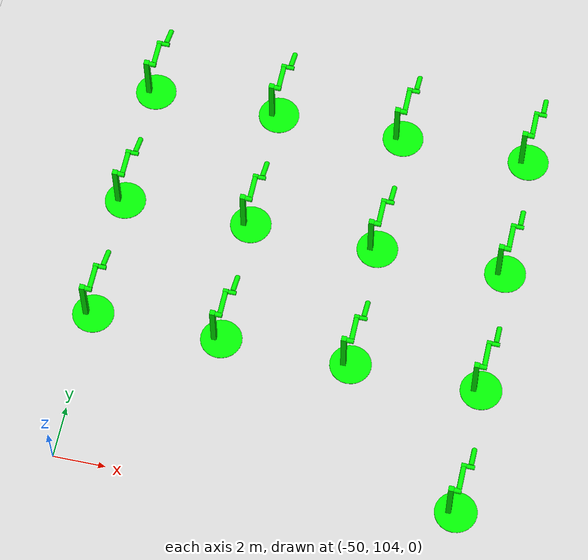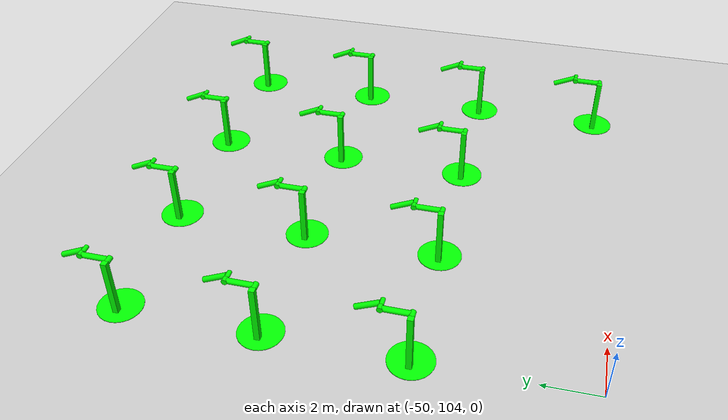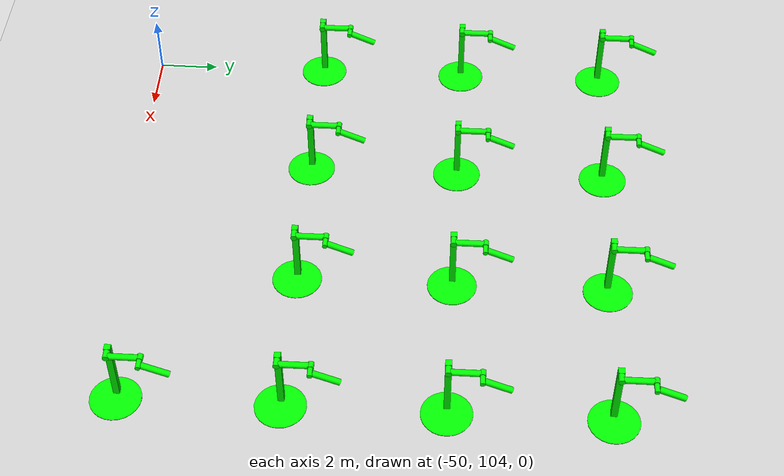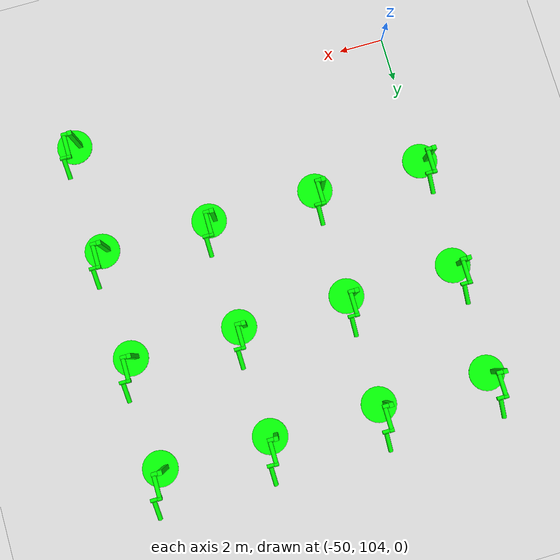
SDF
<sdf version="1.6">
 <world name="double_pendulums">
  <model name="ground_plane">
   <static>true</static>
   <link name="link">
    <collision name="collision">
     <geometry><plane><normal>0 0 1</normal><size>100 100</size></plane></geometry>
    </collision>
    <visual name="visual">
     <geometry><plane><normal>0 0 1</normal><size>100 100</size></plane></geometry>
     <material>
      <ambient>0.8 0.8 0.8 1</ambient>
      <diffuse>0.8 0.8 0.8 1</diffuse>
      <specular>0.8 0.8 0.8 1</specular>
     </material>
    </visual>
   </link>
  </model>
  <model name="dbl_pendulum_528">
   <pose>-35 105 0 0 0 0</pose>
   <link name="base">
    <inertial><mass>100</mass></inertial>
    <visual name="vis_plate_on_ground">
     <pose>0 0 0.01 0 0 0</pose>
     <geometry><cylinder><radius>0.8</radius><length>0.02</length></cylinder></geometry>
     <material><ambient>0 1 0 1</ambient><diffuse>0 1 0 1</diffuse><specular>0 1 0 1</specular></material>
    </visual>
    <visual name="vis_pole">
     <pose>-0.275 0 1.1 0 0 0</pose>
     <geometry><box><size>0.2 0.2 2.2</size></box></geometry>
     <material><ambient>0 1 0 1</ambient><diffuse>0 1 0 1</diffuse><specular>0 1 0 1</specular></material>
    </visual>
    <collision name="col_plate_on_ground">
     <pose>0 0 0.01 0 0 0</pose>
     <geometry><cylinder><radius>0.8</radius><length>0.02</length></cylinder></geometry>
    </collision>
    <collision name="col_pole">
     <pose>-0.275 0 1.1 0 0 0</pose>
     <geometry><box><size>0.2 0.2 2.2</size></box></geometry>
    </collision>
   </link>
   <link name="upper_link">
    <pose>0 0 2.1 -1.5708 0 0</pose>
    <inertial><pose>0 0 0.5 0 0 0</pose></inertial>
    <visual name="vis_upper_joint">
     <pose>-0.05 0 0 0 1.5708 0</pose>
     <geometry><cylinder><radius>0.1</radius><length>0.3</length></cylinder></geometry>
     <material><ambient>0 1 0 1</ambient><diffuse>0 1 0 1</diffuse><specular>0 1 0 1</specular></material>
    </visual>
    <visual name="vis_lower_joint">
     <pose>0 0 1.0 0 1.5708 0</pose>
     <geometry><cylinder><radius>0.1</radius><length>0.2</length></cylinder></geometry>
     <material><ambient>0 1 0 1</ambient><diffuse>0 1 0 1</diffuse><specular>0 1 0 1</specular></material>
    </visual>
    <visual name="vis_cylinder">
     <pose>0 0 0.5 0 0 0</pose>
     <geometry><cylinder><radius>0.1</radius><length>0.9</length></cylinder></geometry>
     <material><ambient>0 1 0 1</ambient><diffuse>0 1 0 1</diffuse><specular>0 1 0 1</specular></material>
    </visual>
    <collision name="col_upper_joint">
     <pose>-0.05 0 0 0 1.5708 0</pose>
     <geometry><cylinder><radius>0.1</radius><length>0.3</length></cylinder></geometry>
    </collision>
    <collision name="col_lower_joint">
     <pose>0 0 1.0 0 1.5708 0</pose>
     <geometry><cylinder><radius>0.1</radius><length>0.2</length></cylinder></geometry>
    </collision>
    <collision name="col_cylinder">
     <pose>0 0 0.5 0 0 0</pose>
     <geometry><cylinder><radius>0.1</radius><length>0.9</length></cylinder></geometry>
    </collision>
   </link>
   <link name="lower_link">
    <pose>0.25 1.0 2.1 -2 0 0</pose>
    <inertial><pose>0 0 0.5 0 0 0</pose></inertial>
    <visual name="vis_lower_joint">
     <pose>0 0 0 0 1.5708 0</pose>
     <geometry><cylinder><radius>0.08</radius><length>0.3</length></cylinder></geometry>
     <material><ambient>0 1 0 1</ambient><diffuse>0 1 0 1</diffuse><specular>0 1 0 1</specular></material>
    </visual>
    <visual name="vis_cylinder">
     <pose>0 0 0.5 0 0 0</pose>
     <geometry><cylinder><radius>0.1</radius><length>0.9</length></cylinder></geometry>
     <material><ambient>0 1 0 1</ambient><diffuse>0 1 0 1</diffuse><specular>0 1 0 1</specular></material>
    </visual>
    <collision name="col_lower_joint">
     <pose>0 0 0 0 1.5708 0</pose>
     <geometry><cylinder><radius>0.08</radius><length>0.3</length></cylinder></geometry>
    </collision>
    <collision name="col_cylinder">
     <pose>0 0 0.5 0 0 0</pose>
     <geometry><cylinder><radius>0.1</radius><length>0.9</length></cylinder></geometry>
    </collision>
   </link>
   <joint name="upper_joint" type="revolute">
    <parent>base</parent>
    <child>upper_link</child>
    <axis><xyz>1.0 0 0</xyz></axis>
   </joint>
   <joint name="lower_joint" type="revolute">
    <parent>upper_link</parent>
    <child>lower_link</child>
    <axis><xyz>1.0 0 0</xyz></axis>
   </joint>
  </model>
  <model name="dbl_pendulum_550">
   <pose>-50 110 0 0 0 0</pose>
   <link name="base">
    <inertial><mass>100</mass></inertial>
    <visual name="vis_plate_on_ground">
     <pose>0 0 0.01 0 0 0</pose>
     <geometry><cylinder><radius>0.8</radius><length>0.02</length></cylinder></geometry>
     <material><ambient>0 1 0 1</ambient><diffuse>0 1 0 1</diffuse><specular>0 1 0 1</specular></material>
    </visual>
    <visual name="vis_pole">
     <pose>-0.275 0 1.1 0 0 0</pose>
     <geometry><box><size>0.2 0.2 2.2</size></box></geometry>
     <material><ambient>0 1 0 1</ambient><diffuse>0 1 0 1</diffuse><specular>0 1 0 1</specular></material>
    </visual>
    <collision name="col_plate_on_ground">
     <pose>0 0 0.01 0 0 0</pose>
     <geometry><cylinder><radius>0.8</radius><length>0.02</length></cylinder></geometry>
    </collision>
    <collision name="col_pole">
     <pose>-0.275 0 1.1 0 0 0</pose>
     <geometry><box><size>0.2 0.2 2.2</size></box></geometry>
    </collision>
   </link>
   <link name="upper_link">
    <pose>0 0 2.1 -1.5708 0 0</pose>
    <inertial><pose>0 0 0.5 0 0 0</pose></inertial>
    <visual name="vis_upper_joint">
     <pose>-0.05 0 0 0 1.5708 0</pose>
     <geometry><cylinder><radius>0.1</radius><length>0.3</length></cylinder></geometry>
     <material><ambient>0 1 0 1</ambient><diffuse>0 1 0 1</diffuse><specular>0 1 0 1</specular></material>
    </visual>
    <visual name="vis_lower_joint">
     <pose>0 0 1.0 0 1.5708 0</pose>
     <geometry><cylinder><radius>0.1</radius><length>0.2</length></cylinder></geometry>
     <material><ambient>0 1 0 1</ambient><diffuse>0 1 0 1</diffuse><specular>0 1 0 1</specular></material>
    </visual>
    <visual name="vis_cylinder">
     <pose>0 0 0.5 0 0 0</pose>
     <geometry><cylinder><radius>0.1</radius><length>0.9</length></cylinder></geometry>
     <material><ambient>0 1 0 1</ambient><diffuse>0 1 0 1</diffuse><specular>0 1 0 1</specular></material>
    </visual>
    <collision name="col_upper_joint">
     <pose>-0.05 0 0 0 1.5708 0</pose>
     <geometry><cylinder><radius>0.1</radius><length>0.3</length></cylinder></geometry>
    </collision>
    <collision name="col_lower_joint">
     <pose>0 0 1.0 0 1.5708 0</pose>
     <geometry><cylinder><radius>0.1</radius><length>0.2</length></cylinder></geometry>
    </collision>
    <collision name="col_cylinder">
     <pose>0 0 0.5 0 0 0</pose>
     <geometry><cylinder><radius>0.1</radius><length>0.9</length></cylinder></geometry>
    </collision>
   </link>
   <link name="lower_link">
    <pose>0.25 1.0 2.1 -2 0 0</pose>
    <inertial><pose>0 0 0.5 0 0 0</pose></inertial>
    <visual name="vis_lower_joint">
     <pose>0 0 0 0 1.5708 0</pose>
     <geometry><cylinder><radius>0.08</radius><length>0.3</length></cylinder></geometry>
     <material><ambient>0 1 0 1</ambient><diffuse>0 1 0 1</diffuse><specular>0 1 0 1</specular></material>
    </visual>
    <visual name="vis_cylinder">
     <pose>0 0 0.5 0 0 0</pose>
     <geometry><cylinder><radius>0.1</radius><length>0.9</length></cylinder></geometry>
     <material><ambient>0 1 0 1</ambient><diffuse>0 1 0 1</diffuse><specular>0 1 0 1</specular></material>
    </visual>
    <collision name="col_lower_joint">
     <pose>0 0 0 0 1.5708 0</pose>
     <geometry><cylinder><radius>0.08</radius><length>0.3</length></cylinder></geometry>
    </collision>
    <collision name="col_cylinder">
     <pose>0 0 0.5 0 0 0</pose>
     <geometry><cylinder><radius>0.1</radius><length>0.9</length></cylinder></geometry>
    </collision>
   </link>
   <joint name="upper_joint" type="revolute">
    <parent>base</parent>
    <child>upper_link</child>
    <axis><xyz>1.0 0 0</xyz></axis>
   </joint>
   <joint name="lower_joint" type="revolute">
    <parent>upper_link</parent>
    <child>lower_link</child>
    <axis><xyz>1.0 0 0</xyz></axis>
   </joint>
  </model>
  <model name="dbl_pendulum_551">
   <pose>-45 110 0 0 0 0</pose>
   <link name="base">
    <inertial><mass>100</mass></inertial>
    <visual name="vis_plate_on_ground">
     <pose>0 0 0.01 0 0 0</pose>
     <geometry><cylinder><radius>0.8</radius><length>0.02</length></cylinder></geometry>
     <material><ambient>0 1 0 1</ambient><diffuse>0 1 0 1</diffuse><specular>0 1 0 1</specular></material>
    </visual>
    <visual name="vis_pole">
     <pose>-0.275 0 1.1 0 0 0</pose>
     <geometry><box><size>0.2 0.2 2.2</size></box></geometry>
     <material><ambient>0 1 0 1</ambient><diffuse>0 1 0 1</diffuse><specular>0 1 0 1</specular></material>
    </visual>
    <collision name="col_plate_on_ground">
     <pose>0 0 0.01 0 0 0</pose>
     <geometry><cylinder><radius>0.8</radius><length>0.02</length></cylinder></geometry>
    </collision>
    <collision name="col_pole">
     <pose>-0.275 0 1.1 0 0 0</pose>
     <geometry><box><size>0.2 0.2 2.2</size></box></geometry>
    </collision>
   </link>
   <link name="upper_link">
    <pose>0 0 2.1 -1.5708 0 0</pose>
    <inertial><pose>0 0 0.5 0 0 0</pose></inertial>
    <visual name="vis_upper_joint">
     <pose>-0.05 0 0 0 1.5708 0</pose>
     <geometry><cylinder><radius>0.1</radius><length>0.3</length></cylinder></geometry>
     <material><ambient>0 1 0 1</ambient><diffuse>0 1 0 1</diffuse><specular>0 1 0 1</specular></material>
    </visual>
    <visual name="vis_lower_joint">
     <pose>0 0 1.0 0 1.5708 0</pose>
     <geometry><cylinder><radius>0.1</radius><length>0.2</length></cylinder></geometry>
     <material><ambient>0 1 0 1</ambient><diffuse>0 1 0 1</diffuse><specular>0 1 0 1</specular></material>
    </visual>
    <visual name="vis_cylinder">
     <pose>0 0 0.5 0 0 0</pose>
     <geometry><cylinder><radius>0.1</radius><length>0.9</length></cylinder></geometry>
     <material><ambient>0 1 0 1</ambient><diffuse>0 1 0 1</diffuse><specular>0 1 0 1</specular></material>
    </visual>
    <collision name="col_upper_joint">
     <pose>-0.05 0 0 0 1.5708 0</pose>
     <geometry><cylinder><radius>0.1</radius><length>0.3</length></cylinder></geometry>
    </collision>
    <collision name="col_lower_joint">
     <pose>0 0 1.0 0 1.5708 0</pose>
     <geometry><cylinder><radius>0.1</radius><length>0.2</length></cylinder></geometry>
    </collision>
    <collision name="col_cylinder">
     <pose>0 0 0.5 0 0 0</pose>
     <geometry><cylinder><radius>0.1</radius><length>0.9</length></cylinder></geometry>
    </collision>
   </link>
   <link name="lower_link">
    <pose>0.25 1.0 2.1 -2 0 0</pose>
    <inertial><pose>0 0 0.5 0 0 0</pose></inertial>
    <visual name="vis_lower_joint">
     <pose>0 0 0 0 1.5708 0</pose>
     <geometry><cylinder><radius>0.08</radius><length>0.3</length></cylinder></geometry>
     <material><ambient>0 1 0 1</ambient><diffuse>0 1 0 1</diffuse><specular>0 1 0 1</specular></material>
    </visual>
    <visual name="vis_cylinder">
     <pose>0 0 0.5 0 0 0</pose>
     <geometry><cylinder><radius>0.1</radius><length>0.9</length></cylinder></geometry>
     <material><ambient>0 1 0 1</ambient><diffuse>0 1 0 1</diffuse><specular>0 1 0 1</specular></material>
    </visual>
    <collision name="col_lower_joint">
     <pose>0 0 0 0 1.5708 0</pose>
     <geometry><cylinder><radius>0.08</radius><length>0.3</length></cylinder></geometry>
    </collision>
    <collision name="col_cylinder">
     <pose>0 0 0.5 0 0 0</pose>
     <geometry><cylinder><radius>0.1</radius><length>0.9</length></cylinder></geometry>
    </collision>
   </link>
   <joint name="upper_joint" type="revolute">
    <parent>base</parent>
    <child>upper_link</child>
    <axis><xyz>1.0 0 0</xyz></axis>
   </joint>
   <joint name="lower_joint" type="revolute">
    <parent>upper_link</parent>
    <child>lower_link</child>
    <axis><xyz>1.0 0 0</xyz></axis>
   </joint>
  </model>
  <model name="dbl_pendulum_552">
   <pose>-40 110 0 0 0 0</pose>
   <link name="base">
    <inertial><mass>100</mass></inertial>
    <visual name="vis_plate_on_ground">
     <pose>0 0 0.01 0 0 0</pose>
     <geometry><cylinder><radius>0.8</radius><length>0.02</length></cylinder></geometry>
     <material><ambient>0 1 0 1</ambient><diffuse>0 1 0 1</diffuse><specular>0 1 0 1</specular></material>
    </visual>
    <visual name="vis_pole">
     <pose>-0.275 0 1.1 0 0 0</pose>
     <geometry><box><size>0.2 0.2 2.2</size></box></geometry>
     <material><ambient>0 1 0 1</ambient><diffuse>0 1 0 1</diffuse><specular>0 1 0 1</specular></material>
    </visual>
    <collision name="col_plate_on_ground">
     <pose>0 0 0.01 0 0 0</pose>
     <geometry><cylinder><radius>0.8</radius><length>0.02</length></cylinder></geometry>
    </collision>
    <collision name="col_pole">
     <pose>-0.275 0 1.1 0 0 0</pose>
     <geometry><box><size>0.2 0.2 2.2</size></box></geometry>
    </collision>
   </link>
   <link name="upper_link">
    <pose>0 0 2.1 -1.5708 0 0</pose>
    <inertial><pose>0 0 0.5 0 0 0</pose></inertial>
    <visual name="vis_upper_joint">
     <pose>-0.05 0 0 0 1.5708 0</pose>
     <geometry><cylinder><radius>0.1</radius><length>0.3</length></cylinder></geometry>
     <material><ambient>0 1 0 1</ambient><diffuse>0 1 0 1</diffuse><specular>0 1 0 1</specular></material>
    </visual>
    <visual name="vis_lower_joint">
     <pose>0 0 1.0 0 1.5708 0</pose>
     <geometry><cylinder><radius>0.1</radius><length>0.2</length></cylinder></geometry>
     <material><ambient>0 1 0 1</ambient><diffuse>0 1 0 1</diffuse><specular>0 1 0 1</specular></material>
    </visual>
    <visual name="vis_cylinder">
     <pose>0 0 0.5 0 0 0</pose>
     <geometry><cylinder><radius>0.1</radius><length>0.9</length></cylinder></geometry>
     <material><ambient>0 1 0 1</ambient><diffuse>0 1 0 1</diffuse><specular>0 1 0 1</specular></material>
    </visual>
    <collision name="col_upper_joint">
     <pose>-0.05 0 0 0 1.5708 0</pose>
     <geometry><cylinder><radius>0.1</radius><length>0.3</length></cylinder></geometry>
    </collision>
    <collision name="col_lower_joint">
     <pose>0 0 1.0 0 1.5708 0</pose>
     <geometry><cylinder><radius>0.1</radius><length>0.2</length></cylinder></geometry>
    </collision>
    <collision name="col_cylinder">
     <pose>0 0 0.5 0 0 0</pose>
     <geometry><cylinder><radius>0.1</radius><length>0.9</length></cylinder></geometry>
    </collision>
   </link>
   <link name="lower_link">
    <pose>0.25 1.0 2.1 -2 0 0</pose>
    <inertial><pose>0 0 0.5 0 0 0</pose></inertial>
    <visual name="vis_lower_joint">
     <pose>0 0 0 0 1.5708 0</pose>
     <geometry><cylinder><radius>0.08</radius><length>0.3</length></cylinder></geometry>
     <material><ambient>0 1 0 1</ambient><diffuse>0 1 0 1</diffuse><specular>0 1 0 1</specular></material>
    </visual>
    <visual name="vis_cylinder">
     <pose>0 0 0.5 0 0 0</pose>
     <geometry><cylinder><radius>0.1</radius><length>0.9</length></cylinder></geometry>
     <material><ambient>0 1 0 1</ambient><diffuse>0 1 0 1</diffuse><specular>0 1 0 1</specular></material>
    </visual>
    <collision name="col_lower_joint">
     <pose>0 0 0 0 1.5708 0</pose>
     <geometry><cylinder><radius>0.08</radius><length>0.3</length></cylinder></geometry>
    </collision>
    <collision name="col_cylinder">
     <pose>0 0 0.5 0 0 0</pose>
     <geometry><cylinder><radius>0.1</radius><length>0.9</length></cylinder></geometry>
    </collision>
   </link>
   <joint name="upper_joint" type="revolute">
    <parent>base</parent>
    <child>upper_link</child>
    <axis><xyz>1.0 0 0</xyz></axis>
   </joint>
   <joint name="lower_joint" type="revolute">
    <parent>upper_link</parent>
    <child>lower_link</child>
    <axis><xyz>1.0 0 0</xyz></axis>
   </joint>
  </model>
  <model name="dbl_pendulum_553">
   <pose>-35 110 0 0 0 0</pose>
   <link name="base">
    <inertial><mass>100</mass></inertial>
    <visual name="vis_plate_on_ground">
     <pose>0 0 0.01 0 0 0</pose>
     <geometry><cylinder><radius>0.8</radius><length>0.02</length></cylinder></geometry>
     <material><ambient>0 1 0 1</ambient><diffuse>0 1 0 1</diffuse><specular>0 1 0 1</specular></material>
    </visual>
    <visual name="vis_pole">
     <pose>-0.275 0 1.1 0 0 0</pose>
     <geometry><box><size>0.2 0.2 2.2</size></box></geometry>
     <material><ambient>0 1 0 1</ambient><diffuse>0 1 0 1</diffuse><specular>0 1 0 1</specular></material>
    </visual>
    <collision name="col_plate_on_ground">
     <pose>0 0 0.01 0 0 0</pose>
     <geometry><cylinder><radius>0.8</radius><length>0.02</length></cylinder></geometry>
    </collision>
    <collision name="col_pole">
     <pose>-0.275 0 1.1 0 0 0</pose>
     <geometry><box><size>0.2 0.2 2.2</size></box></geometry>
    </collision>
   </link>
   <link name="upper_link">
    <pose>0 0 2.1 -1.5708 0 0</pose>
    <inertial><pose>0 0 0.5 0 0 0</pose></inertial>
    <visual name="vis_upper_joint">
     <pose>-0.05 0 0 0 1.5708 0</pose>
     <geometry><cylinder><radius>0.1</radius><length>0.3</length></cylinder></geometry>
     <material><ambient>0 1 0 1</ambient><diffuse>0 1 0 1</diffuse><specular>0 1 0 1</specular></material>
    </visual>
    <visual name="vis_lower_joint">
     <pose>0 0 1.0 0 1.5708 0</pose>
     <geometry><cylinder><radius>0.1</radius><length>0.2</length></cylinder></geometry>
     <material><ambient>0 1 0 1</ambient><diffuse>0 1 0 1</diffuse><specular>0 1 0 1</specular></material>
    </visual>
    <visual name="vis_cylinder">
     <pose>0 0 0.5 0 0 0</pose>
     <geometry><cylinder><radius>0.1</radius><length>0.9</length></cylinder></geometry>
     <material><ambient>0 1 0 1</ambient><diffuse>0 1 0 1</diffuse><specular>0 1 0 1</specular></material>
    </visual>
    <collision name="col_upper_joint">
     <pose>-0.05 0 0 0 1.5708 0</pose>
     <geometry><cylinder><radius>0.1</radius><length>0.3</length></cylinder></geometry>
    </collision>
    <collision name="col_lower_joint">
     <pose>0 0 1.0 0 1.5708 0</pose>
     <geometry><cylinder><radius>0.1</radius><length>0.2</length></cylinder></geometry>
    </collision>
    <collision name="col_cylinder">
     <pose>0 0 0.5 0 0 0</pose>
     <geometry><cylinder><radius>0.1</radius><length>0.9</length></cylinder></geometry>
    </collision>
   </link>
   <link name="lower_link">
    <pose>0.25 1.0 2.1 -2 0 0</pose>
    <inertial><pose>0 0 0.5 0 0 0</pose></inertial>
    <visual name="vis_lower_joint">
     <pose>0 0 0 0 1.5708 0</pose>
     <geometry><cylinder><radius>0.08</radius><length>0.3</length></cylinder></geometry>
     <material><ambient>0 1 0 1</ambient><diffuse>0 1 0 1</diffuse><specular>0 1 0 1</specular></material>
    </visual>
    <visual name="vis_cylinder">
     <pose>0 0 0.5 0 0 0</pose>
     <geometry><cylinder><radius>0.1</radius><length>0.9</length></cylinder></geometry>
     <material><ambient>0 1 0 1</ambient><diffuse>0 1 0 1</diffuse><specular>0 1 0 1</specular></material>
    </visual>
    <collision name="col_lower_joint">
     <pose>0 0 0 0 1.5708 0</pose>
     <geometry><cylinder><radius>0.08</radius><length>0.3</length></cylinder></geometry>
    </collision>
    <collision name="col_cylinder">
     <pose>0 0 0.5 0 0 0</pose>
     <geometry><cylinder><radius>0.1</radius><length>0.9</length></cylinder></geometry>
    </collision>
   </link>
   <joint name="upper_joint" type="revolute">
    <parent>base</parent>
    <child>upper_link</child>
    <axis><xyz>1.0 0 0</xyz></axis>
   </joint>
   <joint name="lower_joint" type="revolute">
    <parent>upper_link</parent>
    <child>lower_link</child>
    <axis><xyz>1.0 0 0</xyz></axis>
   </joint>
  </model>
  <model name="dbl_pendulum_575">
   <pose>-50 115 0 0 0 0</pose>
   <link name="base">
    <inertial><mass>100</mass></inertial>
    <visual name="vis_plate_on_ground">
     <pose>0 0 0.01 0 0 0</pose>
     <geometry><cylinder><radius>0.8</radius><length>0.02</length></cylinder></geometry>
     <material><ambient>0 1 0 1</ambient><diffuse>0 1 0 1</diffuse><specular>0 1 0 1</specular></material>
    </visual>
    <visual name="vis_pole">
     <pose>-0.275 0 1.1 0 0 0</pose>
     <geometry><box><size>0.2 0.2 2.2</size></box></geometry>
     <material><ambient>0 1 0 1</ambient><diffuse>0 1 0 1</diffuse><specular>0 1 0 1</specular></material>
    </visual>
    <collision name="col_plate_on_ground">
     <pose>0 0 0.01 0 0 0</pose>
     <geometry><cylinder><radius>0.8</radius><length>0.02</length></cylinder></geometry>
    </collision>
    <collision name="col_pole">
     <pose>-0.275 0 1.1 0 0 0</pose>
     <geometry><box><size>0.2 0.2 2.2</size></box></geometry>
    </collision>
   </link>
   <link name="upper_link">
    <pose>0 0 2.1 -1.5708 0 0</pose>
    <inertial><pose>0 0 0.5 0 0 0</pose></inertial>
    <visual name="vis_upper_joint">
     <pose>-0.05 0 0 0 1.5708 0</pose>
     <geometry><cylinder><radius>0.1</radius><length>0.3</length></cylinder></geometry>
     <material><ambient>0 1 0 1</ambient><diffuse>0 1 0 1</diffuse><specular>0 1 0 1</specular></material>
    </visual>
    <visual name="vis_lower_joint">
     <pose>0 0 1.0 0 1.5708 0</pose>
     <geometry><cylinder><radius>0.1</radius><length>0.2</length></cylinder></geometry>
     <material><ambient>0 1 0 1</ambient><diffuse>0 1 0 1</diffuse><specular>0 1 0 1</specular></material>
    </visual>
    <visual name="vis_cylinder">
     <pose>0 0 0.5 0 0 0</pose>
     <geometry><cylinder><radius>0.1</radius><length>0.9</length></cylinder></geometry>
     <material><ambient>0 1 0 1</ambient><diffuse>0 1 0 1</diffuse><specular>0 1 0 1</specular></material>
    </visual>
    <collision name="col_upper_joint">
     <pose>-0.05 0 0 0 1.5708 0</pose>
     <geometry><cylinder><radius>0.1</radius><length>0.3</length></cylinder></geometry>
    </collision>
    <collision name="col_lower_joint">
     <pose>0 0 1.0 0 1.5708 0</pose>
     <geometry><cylinder><radius>0.1</radius><length>0.2</length></cylinder></geometry>
    </collision>
    <collision name="col_cylinder">
     <pose>0 0 0.5 0 0 0</pose>
     <geometry><cylinder><radius>0.1</radius><length>0.9</length></cylinder></geometry>
    </collision>
   </link>
   <link name="lower_link">
    <pose>0.25 1.0 2.1 -2 0 0</pose>
    <inertial><pose>0 0 0.5 0 0 0</pose></inertial>
    <visual name="vis_lower_joint">
     <pose>0 0 0 0 1.5708 0</pose>
     <geometry><cylinder><radius>0.08</radius><length>0.3</length></cylinder></geometry>
     <material><ambient>0 1 0 1</ambient><diffuse>0 1 0 1</diffuse><specular>0 1 0 1</specular></material>
    </visual>
    <visual name="vis_cylinder">
     <pose>0 0 0.5 0 0 0</pose>
     <geometry><cylinder><radius>0.1</radius><length>0.9</length></cylinder></geometry>
     <material><ambient>0 1 0 1</ambient><diffuse>0 1 0 1</diffuse><specular>0 1 0 1</specular></material>
    </visual>
    <collision name="col_lower_joint">
     <pose>0 0 0 0 1.5708 0</pose>
     <geometry><cylinder><radius>0.08</radius><length>0.3</length></cylinder></geometry>
    </collision>
    <collision name="col_cylinder">
     <pose>0 0 0.5 0 0 0</pose>
     <geometry><cylinder><radius>0.1</radius><length>0.9</length></cylinder></geometry>
    </collision>
   </link>
   <joint name="upper_joint" type="revolute">
    <parent>base</parent>
    <child>upper_link</child>
    <axis><xyz>1.0 0 0</xyz></axis>
   </joint>
   <joint name="lower_joint" type="revolute">
    <parent>upper_link</parent>
    <child>lower_link</child>
    <axis><xyz>1.0 0 0</xyz></axis>
   </joint>
  </model>
  <model name="dbl_pendulum_576">
   <pose>-45 115 0 0 0 0</pose>
   <link name="base">
    <inertial><mass>100</mass></inertial>
    <visual name="vis_plate_on_ground">
     <pose>0 0 0.01 0 0 0</pose>
     <geometry><cylinder><radius>0.8</radius><length>0.02</length></cylinder></geometry>
     <material><ambient>0 1 0 1</ambient><diffuse>0 1 0 1</diffuse><specular>0 1 0 1</specular></material>
    </visual>
    <visual name="vis_pole">
     <pose>-0.275 0 1.1 0 0 0</pose>
     <geometry><box><size>0.2 0.2 2.2</size></box></geometry>
     <material><ambient>0 1 0 1</ambient><diffuse>0 1 0 1</diffuse><specular>0 1 0 1</specular></material>
    </visual>
    <collision name="col_plate_on_ground">
     <pose>0 0 0.01 0 0 0</pose>
     <geometry><cylinder><radius>0.8</radius><length>0.02</length></cylinder></geometry>
    </collision>
    <collision name="col_pole">
     <pose>-0.275 0 1.1 0 0 0</pose>
     <geometry><box><size>0.2 0.2 2.2</size></box></geometry>
    </collision>
   </link>
   <link name="upper_link">
    <pose>0 0 2.1 -1.5708 0 0</pose>
    <inertial><pose>0 0 0.5 0 0 0</pose></inertial>
    <visual name="vis_upper_joint">
     <pose>-0.05 0 0 0 1.5708 0</pose>
     <geometry><cylinder><radius>0.1</radius><length>0.3</length></cylinder></geometry>
     <material><ambient>0 1 0 1</ambient><diffuse>0 1 0 1</diffuse><specular>0 1 0 1</specular></material>
    </visual>
    <visual name="vis_lower_joint">
     <pose>0 0 1.0 0 1.5708 0</pose>
     <geometry><cylinder><radius>0.1</radius><length>0.2</length></cylinder></geometry>
     <material><ambient>0 1 0 1</ambient><diffuse>0 1 0 1</diffuse><specular>0 1 0 1</specular></material>
    </visual>
    <visual name="vis_cylinder">
     <pose>0 0 0.5 0 0 0</pose>
     <geometry><cylinder><radius>0.1</radius><length>0.9</length></cylinder></geometry>
     <material><ambient>0 1 0 1</ambient><diffuse>0 1 0 1</diffuse><specular>0 1 0 1</specular></material>
    </visual>
    <collision name="col_upper_joint">
     <pose>-0.05 0 0 0 1.5708 0</pose>
     <geometry><cylinder><radius>0.1</radius><length>0.3</length></cylinder></geometry>
    </collision>
    <collision name="col_lower_joint">
     <pose>0 0 1.0 0 1.5708 0</pose>
     <geometry><cylinder><radius>0.1</radius><length>0.2</length></cylinder></geometry>
    </collision>
    <collision name="col_cylinder">
     <pose>0 0 0.5 0 0 0</pose>
     <geometry><cylinder><radius>0.1</radius><length>0.9</length></cylinder></geometry>
    </collision>
   </link>
   <link name="lower_link">
    <pose>0.25 1.0 2.1 -2 0 0</pose>
    <inertial><pose>0 0 0.5 0 0 0</pose></inertial>
    <visual name="vis_lower_joint">
     <pose>0 0 0 0 1.5708 0</pose>
     <geometry><cylinder><radius>0.08</radius><length>0.3</length></cylinder></geometry>
     <material><ambient>0 1 0 1</ambient><diffuse>0 1 0 1</diffuse><specular>0 1 0 1</specular></material>
    </visual>
    <visual name="vis_cylinder">
     <pose>0 0 0.5 0 0 0</pose>
     <geometry><cylinder><radius>0.1</radius><length>0.9</length></cylinder></geometry>
     <material><ambient>0 1 0 1</ambient><diffuse>0 1 0 1</diffuse><specular>0 1 0 1</specular></material>
    </visual>
    <collision name="col_lower_joint">
     <pose>0 0 0 0 1.5708 0</pose>
     <geometry><cylinder><radius>0.08</radius><length>0.3</length></cylinder></geometry>
    </collision>
    <collision name="col_cylinder">
     <pose>0 0 0.5 0 0 0</pose>
     <geometry><cylinder><radius>0.1</radius><length>0.9</length></cylinder></geometry>
    </collision>
   </link>
   <joint name="upper_joint" type="revolute">
    <parent>base</parent>
    <child>upper_link</child>
    <axis><xyz>1.0 0 0</xyz></axis>
   </joint>
   <joint name="lower_joint" type="revolute">
    <parent>upper_link</parent>
    <child>lower_link</child>
    <axis><xyz>1.0 0 0</xyz></axis>
   </joint>
  </model>
  <model name="dbl_pendulum_577">
   <pose>-40 115 0 0 0 0</pose>
   <link name="base">
    <inertial><mass>100</mass></inertial>
    <visual name="vis_plate_on_ground">
     <pose>0 0 0.01 0 0 0</pose>
     <geometry><cylinder><radius>0.8</radius><length>0.02</length></cylinder></geometry>
     <material><ambient>0 1 0 1</ambient><diffuse>0 1 0 1</diffuse><specular>0 1 0 1</specular></material>
    </visual>
    <visual name="vis_pole">
     <pose>-0.275 0 1.1 0 0 0</pose>
     <geometry><box><size>0.2 0.2 2.2</size></box></geometry>
     <material><ambient>0 1 0 1</ambient><diffuse>0 1 0 1</diffuse><specular>0 1 0 1</specular></material>
    </visual>
    <collision name="col_plate_on_ground">
     <pose>0 0 0.01 0 0 0</pose>
     <geometry><cylinder><radius>0.8</radius><length>0.02</length></cylinder></geometry>
    </collision>
    <collision name="col_pole">
     <pose>-0.275 0 1.1 0 0 0</pose>
     <geometry><box><size>0.2 0.2 2.2</size></box></geometry>
    </collision>
   </link>
   <link name="upper_link">
    <pose>0 0 2.1 -1.5708 0 0</pose>
    <inertial><pose>0 0 0.5 0 0 0</pose></inertial>
    <visual name="vis_upper_joint">
     <pose>-0.05 0 0 0 1.5708 0</pose>
     <geometry><cylinder><radius>0.1</radius><length>0.3</length></cylinder></geometry>
     <material><ambient>0 1 0 1</ambient><diffuse>0 1 0 1</diffuse><specular>0 1 0 1</specular></material>
    </visual>
    <visual name="vis_lower_joint">
     <pose>0 0 1.0 0 1.5708 0</pose>
     <geometry><cylinder><radius>0.1</radius><length>0.2</length></cylinder></geometry>
     <material><ambient>0 1 0 1</ambient><diffuse>0 1 0 1</diffuse><specular>0 1 0 1</specular></material>
    </visual>
    <visual name="vis_cylinder">
     <pose>0 0 0.5 0 0 0</pose>
     <geometry><cylinder><radius>0.1</radius><length>0.9</length></cylinder></geometry>
     <material><ambient>0 1 0 1</ambient><diffuse>0 1 0 1</diffuse><specular>0 1 0 1</specular></material>
    </visual>
    <collision name="col_upper_joint">
     <pose>-0.05 0 0 0 1.5708 0</pose>
     <geometry><cylinder><radius>0.1</radius><length>0.3</length></cylinder></geometry>
    </collision>
    <collision name="col_lower_joint">
     <pose>0 0 1.0 0 1.5708 0</pose>
     <geometry><cylinder><radius>0.1</radius><length>0.2</length></cylinder></geometry>
    </collision>
    <collision name="col_cylinder">
     <pose>0 0 0.5 0 0 0</pose>
     <geometry><cylinder><radius>0.1</radius><length>0.9</length></cylinder></geometry>
    </collision>
   </link>
   <link name="lower_link">
    <pose>0.25 1.0 2.1 -2 0 0</pose>
    <inertial><pose>0 0 0.5 0 0 0</pose></inertial>
    <visual name="vis_lower_joint">
     <pose>0 0 0 0 1.5708 0</pose>
     <geometry><cylinder><radius>0.08</radius><length>0.3</length></cylinder></geometry>
     <material><ambient>0 1 0 1</ambient><diffuse>0 1 0 1</diffuse><specular>0 1 0 1</specular></material>
    </visual>
    <visual name="vis_cylinder">
     <pose>0 0 0.5 0 0 0</pose>
     <geometry><cylinder><radius>0.1</radius><length>0.9</length></cylinder></geometry>
     <material><ambient>0 1 0 1</ambient><diffuse>0 1 0 1</diffuse><specular>0 1 0 1</specular></material>
    </visual>
    <collision name="col_lower_joint">
     <pose>0 0 0 0 1.5708 0</pose>
     <geometry><cylinder><radius>0.08</radius><length>0.3</length></cylinder></geometry>
    </collision>
    <collision name="col_cylinder">
     <pose>0 0 0.5 0 0 0</pose>
     <geometry><cylinder><radius>0.1</radius><length>0.9</length></cylinder></geometry>
    </collision>
   </link>
   <joint name="upper_joint" type="revolute">
    <parent>base</parent>
    <child>upper_link</child>
    <axis><xyz>1.0 0 0</xyz></axis>
   </joint>
   <joint name="lower_joint" type="revolute">
    <parent>upper_link</parent>
    <child>lower_link</child>
    <axis><xyz>1.0 0 0</xyz></axis>
   </joint>
  </model>
  <model name="dbl_pendulum_578">
   <pose>-35 115 0 0 0 0</pose>
   <link name="base">
    <inertial><mass>100</mass></inertial>
    <visual name="vis_plate_on_ground">
     <pose>0 0 0.01 0 0 0</pose>
     <geometry><cylinder><radius>0.8</radius><length>0.02</length></cylinder></geometry>
     <material><ambient>0 1 0 1</ambient><diffuse>0 1 0 1</diffuse><specular>0 1 0 1</specular></material>
    </visual>
    <visual name="vis_pole">
     <pose>-0.275 0 1.1 0 0 0</pose>
     <geometry><box><size>0.2 0.2 2.2</size></box></geometry>
     <material><ambient>0 1 0 1</ambient><diffuse>0 1 0 1</diffuse><specular>0 1 0 1</specular></material>
    </visual>
    <collision name="col_plate_on_ground">
     <pose>0 0 0.01 0 0 0</pose>
     <geometry><cylinder><radius>0.8</radius><length>0.02</length></cylinder></geometry>
    </collision>
    <collision name="col_pole">
     <pose>-0.275 0 1.1 0 0 0</pose>
     <geometry><box><size>0.2 0.2 2.2</size></box></geometry>
    </collision>
   </link>
   <link name="upper_link">
    <pose>0 0 2.1 -1.5708 0 0</pose>
    <inertial><pose>0 0 0.5 0 0 0</pose></inertial>
    <visual name="vis_upper_joint">
     <pose>-0.05 0 0 0 1.5708 0</pose>
     <geometry><cylinder><radius>0.1</radius><length>0.3</length></cylinder></geometry>
     <material><ambient>0 1 0 1</ambient><diffuse>0 1 0 1</diffuse><specular>0 1 0 1</specular></material>
    </visual>
    <visual name="vis_lower_joint">
     <pose>0 0 1.0 0 1.5708 0</pose>
     <geometry><cylinder><radius>0.1</radius><length>0.2</length></cylinder></geometry>
     <material><ambient>0 1 0 1</ambient><diffuse>0 1 0 1</diffuse><specular>0 1 0 1</specular></material>
    </visual>
    <visual name="vis_cylinder">
     <pose>0 0 0.5 0 0 0</pose>
     <geometry><cylinder><radius>0.1</radius><length>0.9</length></cylinder></geometry>
     <material><ambient>0 1 0 1</ambient><diffuse>0 1 0 1</diffuse><specular>0 1 0 1</specular></material>
    </visual>
    <collision name="col_upper_joint">
     <pose>-0.05 0 0 0 1.5708 0</pose>
     <geometry><cylinder><radius>0.1</radius><length>0.3</length></cylinder></geometry>
    </collision>
    <collision name="col_lower_joint">
     <pose>0 0 1.0 0 1.5708 0</pose>
     <geometry><cylinder><radius>0.1</radius><length>0.2</length></cylinder></geometry>
    </collision>
    <collision name="col_cylinder">
     <pose>0 0 0.5 0 0 0</pose>
     <geometry><cylinder><radius>0.1</radius><length>0.9</length></cylinder></geometry>
    </collision>
   </link>
   <link name="lower_link">
    <pose>0.25 1.0 2.1 -2 0 0</pose>
    <inertial><pose>0 0 0.5 0 0 0</pose></inertial>
    <visual name="vis_lower_joint">
     <pose>0 0 0 0 1.5708 0</pose>
     <geometry><cylinder><radius>0.08</radius><length>0.3</length></cylinder></geometry>
     <material><ambient>0 1 0 1</ambient><diffuse>0 1 0 1</diffuse><specular>0 1 0 1</specular></material>
    </visual>
    <visual name="vis_cylinder">
     <pose>0 0 0.5 0 0 0</pose>
     <geometry><cylinder><radius>0.1</radius><length>0.9</length></cylinder></geometry>
     <material><ambient>0 1 0 1</ambient><diffuse>0 1 0 1</diffuse><specular>0 1 0 1</specular></material>
    </visual>
    <collision name="col_lower_joint">
     <pose>0 0 0 0 1.5708 0</pose>
     <geometry><cylinder><radius>0.08</radius><length>0.3</length></cylinder></geometry>
    </collision>
    <collision name="col_cylinder">
     <pose>0 0 0.5 0 0 0</pose>
     <geometry><cylinder><radius>0.1</radius><length>0.9</length></cylinder></geometry>
    </collision>
   </link>
   <joint name="upper_joint" type="revolute">
    <parent>base</parent>
    <child>upper_link</child>
    <axis><xyz>1.0 0 0</xyz></axis>
   </joint>
   <joint name="lower_joint" type="revolute">
    <parent>upper_link</parent>
    <child>lower_link</child>
    <axis><xyz>1.0 0 0</xyz></axis>
   </joint>
  </model>
  <model name="dbl_pendulum_600">
   <pose>-50 120 0 0 0 0</pose>
   <link name="base">
    <inertial><mass>100</mass></inertial>
    <visual name="vis_plate_on_ground">
     <pose>0 0 0.01 0 0 0</pose>
     <geometry><cylinder><radius>0.8</radius><length>0.02</length></cylinder></geometry>
     <material><ambient>0 1 0 1</ambient><diffuse>0 1 0 1</diffuse><specular>0 1 0 1</specular></material>
    </visual>
    <visual name="vis_pole">
     <pose>-0.275 0 1.1 0 0 0</pose>
     <geometry><box><size>0.2 0.2 2.2</size></box></geometry>
     <material><ambient>0 1 0 1</ambient><diffuse>0 1 0 1</diffuse><specular>0 1 0 1</specular></material>
    </visual>
    <collision name="col_plate_on_ground">
     <pose>0 0 0.01 0 0 0</pose>
     <geometry><cylinder><radius>0.8</radius><length>0.02</length></cylinder></geometry>
    </collision>
    <collision name="col_pole">
     <pose>-0.275 0 1.1 0 0 0</pose>
     <geometry><box><size>0.2 0.2 2.2</size></box></geometry>
    </collision>
   </link>
   <link name="upper_link">
    <pose>0 0 2.1 -1.5708 0 0</pose>
    <inertial><pose>0 0 0.5 0 0 0</pose></inertial>
    <visual name="vis_upper_joint">
     <pose>-0.05 0 0 0 1.5708 0</pose>
     <geometry><cylinder><radius>0.1</radius><length>0.3</length></cylinder></geometry>
     <material><ambient>0 1 0 1</ambient><diffuse>0 1 0 1</diffuse><specular>0 1 0 1</specular></material>
    </visual>
    <visual name="vis_lower_joint">
     <pose>0 0 1.0 0 1.5708 0</pose>
     <geometry><cylinder><radius>0.1</radius><length>0.2</length></cylinder></geometry>
     <material><ambient>0 1 0 1</ambient><diffuse>0 1 0 1</diffuse><specular>0 1 0 1</specular></material>
    </visual>
    <visual name="vis_cylinder">
     <pose>0 0 0.5 0 0 0</pose>
     <geometry><cylinder><radius>0.1</radius><length>0.9</length></cylinder></geometry>
     <material><ambient>0 1 0 1</ambient><diffuse>0 1 0 1</diffuse><specular>0 1 0 1</specular></material>
    </visual>
    <collision name="col_upper_joint">
     <pose>-0.05 0 0 0 1.5708 0</pose>
     <geometry><cylinder><radius>0.1</radius><length>0.3</length></cylinder></geometry>
    </collision>
    <collision name="col_lower_joint">
     <pose>0 0 1.0 0 1.5708 0</pose>
     <geometry><cylinder><radius>0.1</radius><length>0.2</length></cylinder></geometry>
    </collision>
    <collision name="col_cylinder">
     <pose>0 0 0.5 0 0 0</pose>
     <geometry><cylinder><radius>0.1</radius><length>0.9</length></cylinder></geometry>
    </collision>
   </link>
   <link name="lower_link">
    <pose>0.25 1.0 2.1 -2 0 0</pose>
    <inertial><pose>0 0 0.5 0 0 0</pose></inertial>
    <visual name="vis_lower_joint">
     <pose>0 0 0 0 1.5708 0</pose>
     <geometry><cylinder><radius>0.08</radius><length>0.3</length></cylinder></geometry>
     <material><ambient>0 1 0 1</ambient><diffuse>0 1 0 1</diffuse><specular>0 1 0 1</specular></material>
    </visual>
    <visual name="vis_cylinder">
     <pose>0 0 0.5 0 0 0</pose>
     <geometry><cylinder><radius>0.1</radius><length>0.9</length></cylinder></geometry>
     <material><ambient>0 1 0 1</ambient><diffuse>0 1 0 1</diffuse><specular>0 1 0 1</specular></material>
    </visual>
    <collision name="col_lower_joint">
     <pose>0 0 0 0 1.5708 0</pose>
     <geometry><cylinder><radius>0.08</radius><length>0.3</length></cylinder></geometry>
    </collision>
    <collision name="col_cylinder">
     <pose>0 0 0.5 0 0 0</pose>
     <geometry><cylinder><radius>0.1</radius><length>0.9</length></cylinder></geometry>
    </collision>
   </link>
   <joint name="upper_joint" type="revolute">
    <parent>base</parent>
    <child>upper_link</child>
    <axis><xyz>1.0 0 0</xyz></axis>
   </joint>
   <joint name="lower_joint" type="revolute">
    <parent>upper_link</parent>
    <child>lower_link</child>
    <axis><xyz>1.0 0 0</xyz></axis>
   </joint>
  </model>
  <model name="dbl_pendulum_601">
   <pose>-45 120 0 0 0 0</pose>
   <link name="base">
    <inertial><mass>100</mass></inertial>
    <visual name="vis_plate_on_ground">
     <pose>0 0 0.01 0 0 0</pose>
     <geometry><cylinder><radius>0.8</radius><length>0.02</length></cylinder></geometry>
     <material><ambient>0 1 0 1</ambient><diffuse>0 1 0 1</diffuse><specular>0 1 0 1</specular></material>
    </visual>
    <visual name="vis_pole">
     <pose>-0.275 0 1.1 0 0 0</pose>
     <geometry><box><size>0.2 0.2 2.2</size></box></geometry>
     <material><ambient>0 1 0 1</ambient><diffuse>0 1 0 1</diffuse><specular>0 1 0 1</specular></material>
    </visual>
    <collision name="col_plate_on_ground">
     <pose>0 0 0.01 0 0 0</pose>
     <geometry><cylinder><radius>0.8</radius><length>0.02</length></cylinder></geometry>
    </collision>
    <collision name="col_pole">
     <pose>-0.275 0 1.1 0 0 0</pose>
     <geometry><box><size>0.2 0.2 2.2</size></box></geometry>
    </collision>
   </link>
   <link name="upper_link">
    <pose>0 0 2.1 -1.5708 0 0</pose>
    <inertial><pose>0 0 0.5 0 0 0</pose></inertial>
    <visual name="vis_upper_joint">
     <pose>-0.05 0 0 0 1.5708 0</pose>
     <geometry><cylinder><radius>0.1</radius><length>0.3</length></cylinder></geometry>
     <material><ambient>0 1 0 1</ambient><diffuse>0 1 0 1</diffuse><specular>0 1 0 1</specular></material>
    </visual>
    <visual name="vis_lower_joint">
     <pose>0 0 1.0 0 1.5708 0</pose>
     <geometry><cylinder><radius>0.1</radius><length>0.2</length></cylinder></geometry>
     <material><ambient>0 1 0 1</ambient><diffuse>0 1 0 1</diffuse><specular>0 1 0 1</specular></material>
    </visual>
    <visual name="vis_cylinder">
     <pose>0 0 0.5 0 0 0</pose>
     <geometry><cylinder><radius>0.1</radius><length>0.9</length></cylinder></geometry>
     <material><ambient>0 1 0 1</ambient><diffuse>0 1 0 1</diffuse><specular>0 1 0 1</specular></material>
    </visual>
    <collision name="col_upper_joint">
     <pose>-0.05 0 0 0 1.5708 0</pose>
     <geometry><cylinder><radius>0.1</radius><length>0.3</length></cylinder></geometry>
    </collision>
    <collision name="col_lower_joint">
     <pose>0 0 1.0 0 1.5708 0</pose>
     <geometry><cylinder><radius>0.1</radius><length>0.2</length></cylinder></geometry>
    </collision>
    <collision name="col_cylinder">
     <pose>0 0 0.5 0 0 0</pose>
     <geometry><cylinder><radius>0.1</radius><length>0.9</length></cylinder></geometry>
    </collision>
   </link>
   <link name="lower_link">
    <pose>0.25 1.0 2.1 -2 0 0</pose>
    <inertial><pose>0 0 0.5 0 0 0</pose></inertial>
    <visual name="vis_lower_joint">
     <pose>0 0 0 0 1.5708 0</pose>
     <geometry><cylinder><radius>0.08</radius><length>0.3</length></cylinder></geometry>
     <material><ambient>0 1 0 1</ambient><diffuse>0 1 0 1</diffuse><specular>0 1 0 1</specular></material>
    </visual>
    <visual name="vis_cylinder">
     <pose>0 0 0.5 0 0 0</pose>
     <geometry><cylinder><radius>0.1</radius><length>0.9</length></cylinder></geometry>
     <material><ambient>0 1 0 1</ambient><diffuse>0 1 0 1</diffuse><specular>0 1 0 1</specular></material>
    </visual>
    <collision name="col_lower_joint">
     <pose>0 0 0 0 1.5708 0</pose>
     <geometry><cylinder><radius>0.08</radius><length>0.3</length></cylinder></geometry>
    </collision>
    <collision name="col_cylinder">
     <pose>0 0 0.5 0 0 0</pose>
     <geometry><cylinder><radius>0.1</radius><length>0.9</length></cylinder></geometry>
    </collision>
   </link>
   <joint name="upper_joint" type="revolute">
    <parent>base</parent>
    <child>upper_link</child>
    <axis><xyz>1.0 0 0</xyz></axis>
   </joint>
   <joint name="lower_joint" type="revolute">
    <parent>upper_link</parent>
    <child>lower_link</child>
    <axis><xyz>1.0 0 0</xyz></axis>
   </joint>
  </model>
  <model name="dbl_pendulum_602">
   <pose>-40 120 0 0 0 0</pose>
   <link name="base">
    <inertial><mass>100</mass></inertial>
    <visual name="vis_plate_on_ground">
     <pose>0 0 0.01 0 0 0</pose>
     <geometry><cylinder><radius>0.8</radius><length>0.02</length></cylinder></geometry>
     <material><ambient>0 1 0 1</ambient><diffuse>0 1 0 1</diffuse><specular>0 1 0 1</specular></material>
    </visual>
    <visual name="vis_pole">
     <pose>-0.275 0 1.1 0 0 0</pose>
     <geometry><box><size>0.2 0.2 2.2</size></box></geometry>
     <material><ambient>0 1 0 1</ambient><diffuse>0 1 0 1</diffuse><specular>0 1 0 1</specular></material>
    </visual>
    <collision name="col_plate_on_ground">
     <pose>0 0 0.01 0 0 0</pose>
     <geometry><cylinder><radius>0.8</radius><length>0.02</length></cylinder></geometry>
    </collision>
    <collision name="col_pole">
     <pose>-0.275 0 1.1 0 0 0</pose>
     <geometry><box><size>0.2 0.2 2.2</size></box></geometry>
    </collision>
   </link>
   <link name="upper_link">
    <pose>0 0 2.1 -1.5708 0 0</pose>
    <inertial><pose>0 0 0.5 0 0 0</pose></inertial>
    <visual name="vis_upper_joint">
     <pose>-0.05 0 0 0 1.5708 0</pose>
     <geometry><cylinder><radius>0.1</radius><length>0.3</length></cylinder></geometry>
     <material><ambient>0 1 0 1</ambient><diffuse>0 1 0 1</diffuse><specular>0 1 0 1</specular></material>
    </visual>
    <visual name="vis_lower_joint">
     <pose>0 0 1.0 0 1.5708 0</pose>
     <geometry><cylinder><radius>0.1</radius><length>0.2</length></cylinder></geometry>
     <material><ambient>0 1 0 1</ambient><diffuse>0 1 0 1</diffuse><specular>0 1 0 1</specular></material>
    </visual>
    <visual name="vis_cylinder">
     <pose>0 0 0.5 0 0 0</pose>
     <geometry><cylinder><radius>0.1</radius><length>0.9</length></cylinder></geometry>
     <material><ambient>0 1 0 1</ambient><diffuse>0 1 0 1</diffuse><specular>0 1 0 1</specular></material>
    </visual>
    <collision name="col_upper_joint">
     <pose>-0.05 0 0 0 1.5708 0</pose>
     <geometry><cylinder><radius>0.1</radius><length>0.3</length></cylinder></geometry>
    </collision>
    <collision name="col_lower_joint">
     <pose>0 0 1.0 0 1.5708 0</pose>
     <geometry><cylinder><radius>0.1</radius><length>0.2</length></cylinder></geometry>
    </collision>
    <collision name="col_cylinder">
     <pose>0 0 0.5 0 0 0</pose>
     <geometry><cylinder><radius>0.1</radius><length>0.9</length></cylinder></geometry>
    </collision>
   </link>
   <link name="lower_link">
    <pose>0.25 1.0 2.1 -2 0 0</pose>
    <inertial><pose>0 0 0.5 0 0 0</pose></inertial>
    <visual name="vis_lower_joint">
     <pose>0 0 0 0 1.5708 0</pose>
     <geometry><cylinder><radius>0.08</radius><length>0.3</length></cylinder></geometry>
     <material><ambient>0 1 0 1</ambient><diffuse>0 1 0 1</diffuse><specular>0 1 0 1</specular></material>
    </visual>
    <visual name="vis_cylinder">
     <pose>0 0 0.5 0 0 0</pose>
     <geometry><cylinder><radius>0.1</radius><length>0.9</length></cylinder></geometry>
     <material><ambient>0 1 0 1</ambient><diffuse>0 1 0 1</diffuse><specular>0 1 0 1</specular></material>
    </visual>
    <collision name="col_lower_joint">
     <pose>0 0 0 0 1.5708 0</pose>
     <geometry><cylinder><radius>0.08</radius><length>0.3</length></cylinder></geometry>
    </collision>
    <collision name="col_cylinder">
     <pose>0 0 0.5 0 0 0</pose>
     <geometry><cylinder><radius>0.1</radius><length>0.9</length></cylinder></geometry>
    </collision>
   </link>
   <joint name="upper_joint" type="revolute">
    <parent>base</parent>
    <child>upper_link</child>
    <axis><xyz>1.0 0 0</xyz></axis>
   </joint>
   <joint name="lower_joint" type="revolute">
    <parent>upper_link</parent>
    <child>lower_link</child>
    <axis><xyz>1.0 0 0</xyz></axis>
   </joint>
  </model>
  <model name="dbl_pendulum_603">
   <pose>-35 120 0 0 0 0</pose>
   <link name="base">
    <inertial><mass>100</mass></inertial>
    <visual name="vis_plate_on_ground">
     <pose>0 0 0.01 0 0 0</pose>
     <geometry><cylinder><radius>0.8</radius><length>0.02</length></cylinder></geometry>
     <material><ambient>0 1 0 1</ambient><diffuse>0 1 0 1</diffuse><specular>0 1 0 1</specular></material>
    </visual>
    <visual name="vis_pole">
     <pose>-0.275 0 1.1 0 0 0</pose>
     <geometry><box><size>0.2 0.2 2.2</size></box></geometry>
     <material><ambient>0 1 0 1</ambient><diffuse>0 1 0 1</diffuse><specular>0 1 0 1</specular></material>
    </visual>
    <collision name="col_plate_on_ground">
     <pose>0 0 0.01 0 0 0</pose>
     <geometry><cylinder><radius>0.8</radius><length>0.02</length></cylinder></geometry>
    </collision>
    <collision name="col_pole">
     <pose>-0.275 0 1.1 0 0 0</pose>
     <geometry><box><size>0.2 0.2 2.2</size></box></geometry>
    </collision>
   </link>
   <link name="upper_link">
    <pose>0 0 2.1 -1.5708 0 0</pose>
    <inertial><pose>0 0 0.5 0 0 0</pose></inertial>
    <visual name="vis_upper_joint">
     <pose>-0.05 0 0 0 1.5708 0</pose>
     <geometry><cylinder><radius>0.1</radius><length>0.3</length></cylinder></geometry>
     <material><ambient>0 1 0 1</ambient><diffuse>0 1 0 1</diffuse><specular>0 1 0 1</specular></material>
    </visual>
    <visual name="vis_lower_joint">
     <pose>0 0 1.0 0 1.5708 0</pose>
     <geometry><cylinder><radius>0.1</radius><length>0.2</length></cylinder></geometry>
     <material><ambient>0 1 0 1</ambient><diffuse>0 1 0 1</diffuse><specular>0 1 0 1</specular></material>
    </visual>
    <visual name="vis_cylinder">
     <pose>0 0 0.5 0 0 0</pose>
     <geometry><cylinder><radius>0.1</radius><length>0.9</length></cylinder></geometry>
     <material><ambient>0 1 0 1</ambient><diffuse>0 1 0 1</diffuse><specular>0 1 0 1</specular></material>
    </visual>
    <collision name="col_upper_joint">
     <pose>-0.05 0 0 0 1.5708 0</pose>
     <geometry><cylinder><radius>0.1</radius><length>0.3</length></cylinder></geometry>
    </collision>
    <collision name="col_lower_joint">
     <pose>0 0 1.0 0 1.5708 0</pose>
     <geometry><cylinder><radius>0.1</radius><length>0.2</length></cylinder></geometry>
    </collision>
    <collision name="col_cylinder">
     <pose>0 0 0.5 0 0 0</pose>
     <geometry><cylinder><radius>0.1</radius><length>0.9</length></cylinder></geometry>
    </collision>
   </link>
   <link name="lower_link">
    <pose>0.25 1.0 2.1 -2 0 0</pose>
    <inertial><pose>0 0 0.5 0 0 0</pose></inertial>
    <visual name="vis_lower_joint">
     <pose>0 0 0 0 1.5708 0</pose>
     <geometry><cylinder><radius>0.08</radius><length>0.3</length></cylinder></geometry>
     <material><ambient>0 1 0 1</ambient><diffuse>0 1 0 1</diffuse><specular>0 1 0 1</specular></material>
    </visual>
    <visual name="vis_cylinder">
     <pose>0 0 0.5 0 0 0</pose>
     <geometry><cylinder><radius>0.1</radius><length>0.9</length></cylinder></geometry>
     <material><ambient>0 1 0 1</ambient><diffuse>0 1 0 1</diffuse><specular>0 1 0 1</specular></material>
    </visual>
    <collision name="col_lower_joint">
     <pose>0 0 0 0 1.5708 0</pose>
     <geometry><cylinder><radius>0.08</radius><length>0.3</length></cylinder></geometry>
    </collision>
    <collision name="col_cylinder">
     <pose>0 0 0.5 0 0 0</pose>
     <geometry><cylinder><radius>0.1</radius><length>0.9</length></cylinder></geometry>
    </collision>
   </link>
   <joint name="upper_joint" type="revolute">
    <parent>base</parent>
    <child>upper_link</child>
    <axis><xyz>1.0 0 0</xyz></axis>
   </joint>
   <joint name="lower_joint" type="revolute">
    <parent>upper_link</parent>
    <child>lower_link</child>
    <axis><xyz>1.0 0 0</xyz></axis>
   </joint>
  </model>
 </world>
</sdf>
